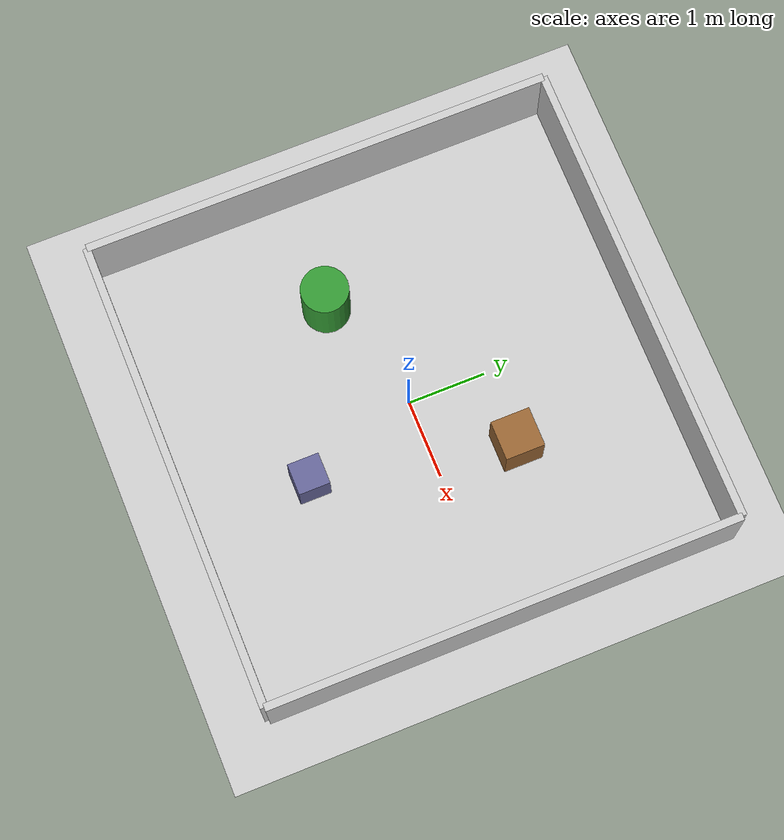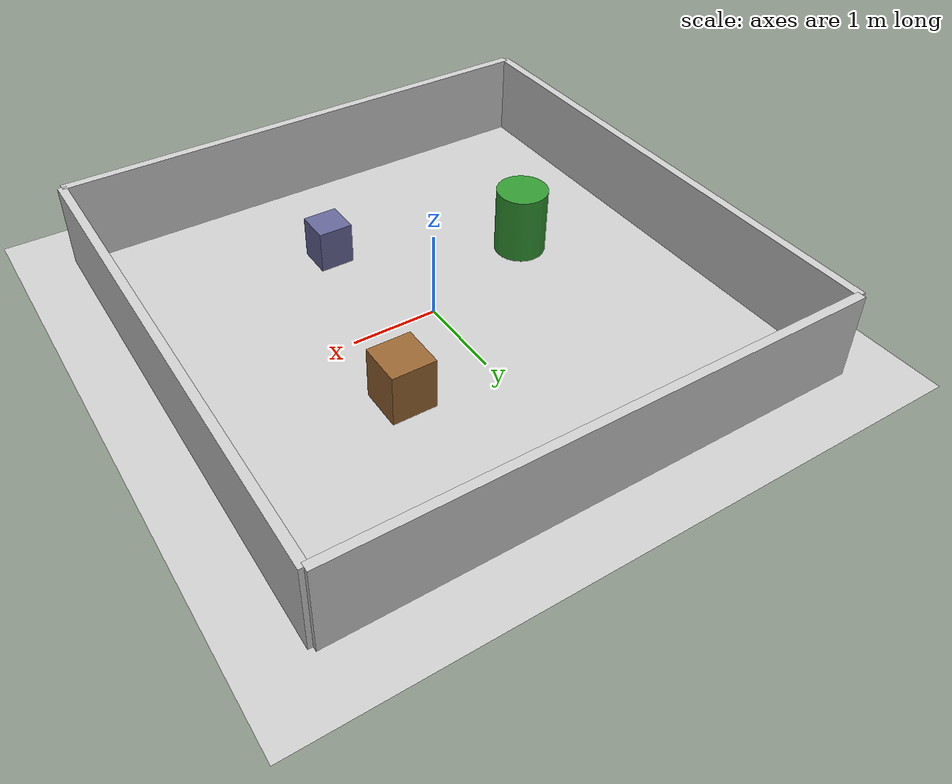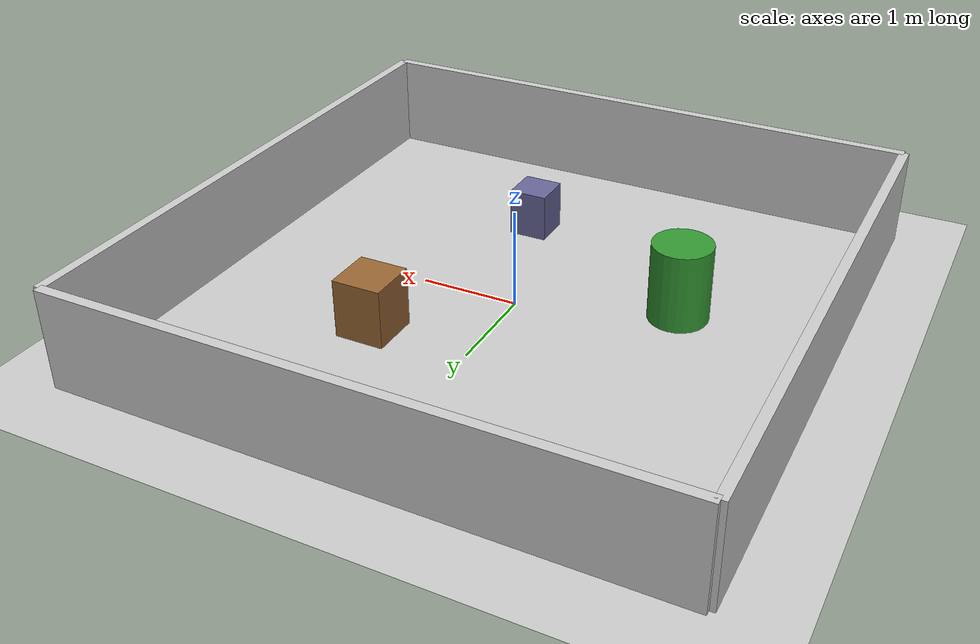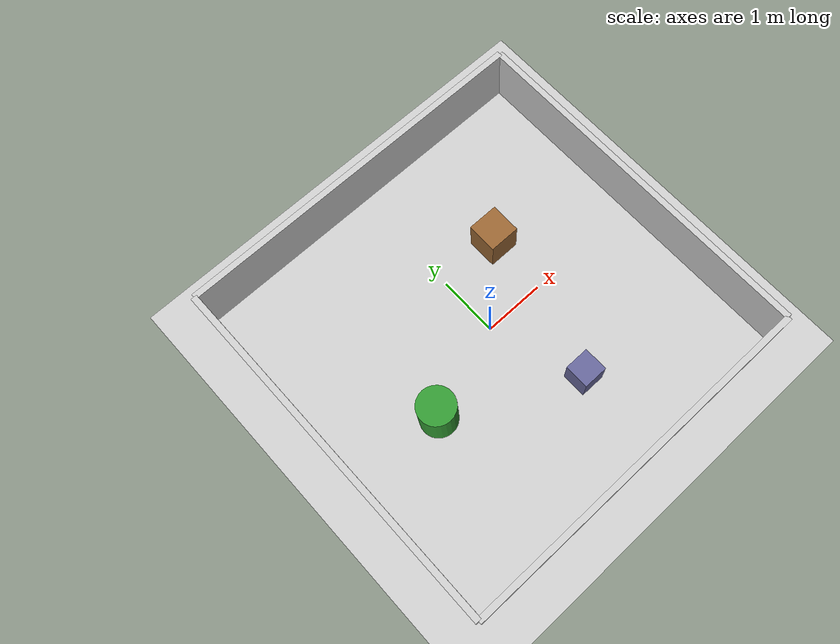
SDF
<?xml version="1.0" ?>
<sdf version="1.6">
  <world name="machinecat_room">
    <include>
      <uri>model://ground_plane</uri>
    </include>

    <include>
      <uri>model://sun</uri>
    </include>

    <physics type="ode">
      <max_step_size>0.01</max_step_size>
      <real_time_factor>1</real_time_factor>
      <real_time_update_rate>100</real_time_update_rate>
    </physics>

    <scene>
      <ambient>0.4 0.4 0.4 1</ambient>
      <background>0.7 0.7 0.7 1</background>
      <shadows>true</shadows>
    </scene>

    <model name="wall_front">
      <static>true</static>
      <pose>0 3 0.5 0 0 0</pose>
      <link name="link">
        <collision name="collision">
          <geometry>
            <box>
              <size>6 0.1 1</size>
            </box>
          </geometry>
        </collision>
        <visual name="visual">
          <geometry>
            <box>
              <size>6 0.1 1</size>
            </box>
          </geometry>
          <material>
            <ambient>0.8 0.8 0.8 1</ambient>
            <diffuse>0.8 0.8 0.8 1</diffuse>
          </material>
        </visual>
      </link>
    </model>

    <model name="wall_back">
      <static>true</static>
      <pose>0 -3 0.5 0 0 0</pose>
      <link name="link">
        <collision name="collision">
          <geometry>
            <box>
              <size>6 0.1 1</size>
            </box>
          </geometry>
        </collision>
        <visual name="visual">
          <geometry>
            <box>
              <size>6 0.1 1</size>
            </box>
          </geometry>
          <material>
            <ambient>0.8 0.8 0.8 1</ambient>
            <diffuse>0.8 0.8 0.8 1</diffuse>
          </material>
        </visual>
      </link>
    </model>

    <model name="wall_left">
      <static>true</static>
      <pose>-3 0 0.5 0 0 0</pose>
      <link name="link">
        <collision name="collision">
          <geometry>
            <box>
              <size>0.1 6 1</size>
            </box>
          </geometry>
        </collision>
        <visual name="visual">
          <geometry>
            <box>
              <size>0.1 6 1</size>
            </box>
          </geometry>
          <material>
            <ambient>0.8 0.8 0.8 1</ambient>
            <diffuse>0.8 0.8 0.8 1</diffuse>
          </material>
        </visual>
      </link>
    </model>

    <model name="wall_right">
      <static>true</static>
      <pose>3 0 0.5 0 0 0</pose>
      <link name="link">
        <collision name="collision">
          <geometry>
            <box>
              <size>0.1 6 1</size>
            </box>
          </geometry>
        </collision>
        <visual name="visual">
          <geometry>
            <box>
              <size>0.1 6 1</size>
            </box>
          </geometry>
          <material>
            <ambient>0.8 0.8 0.8 1</ambient>
            <diffuse>0.8 0.8 0.8 1</diffuse>
          </material>
        </visual>
      </link>
    </model>

    <model name="obstacle_1">
      <static>true</static>
      <pose>1 1 0.3 0 0 0</pose>
      <link name="link">
        <collision name="collision">
          <geometry>
            <box>
              <size>0.5 0.5 0.6</size>
            </box>
          </geometry>
        </collision>
        <visual name="visual">
          <geometry>
            <box>
              <size>0.5 0.5 0.6</size>
            </box>
          </geometry>
          <material>
            <ambient>0.6 0.4 0.2 1</ambient>
            <diffuse>0.6 0.4 0.2 1</diffuse>
          </material>
        </visual>
      </link>
    </model>

    <model name="obstacle_2">
      <static>true</static>
      <pose>-1.5 -0.5 0.4 0 0 0</pose>
      <link name="link">
        <collision name="collision">
          <geometry>
            <cylinder>
              <radius>0.3</radius>
              <length>0.8</length>
            </cylinder>
          </geometry>
        </collision>
        <visual name="visual">
          <geometry>
            <cylinder>
              <radius>0.3</radius>
              <length>0.8</length>
            </cylinder>
          </geometry>
          <material>
            <ambient>0.2 0.6 0.2 1</ambient>
            <diffuse>0.2 0.6 0.2 1</diffuse>
          </material>
        </visual>
      </link>
    </model>

    <model name="obstacle_3">
      <static>true</static>
      <pose>0.5 -1.5 0.25 0 0 0</pose>
      <link name="link">
        <collision name="collision">
          <geometry>
            <box>
              <size>0.4 0.4 0.5</size>
            </box>
          </geometry>
        </collision>
        <visual name="visual">
          <geometry>
            <box>
              <size>0.4 0.4 0.5</size>
            </box>
          </geometry>
          <material>
            <ambient>0.4 0.4 0.6 1</ambient>
            <diffuse>0.4 0.4 0.6 1</diffuse>
          </material>
        </visual>
      </link>
    </model>

  </world>
</sdf>
